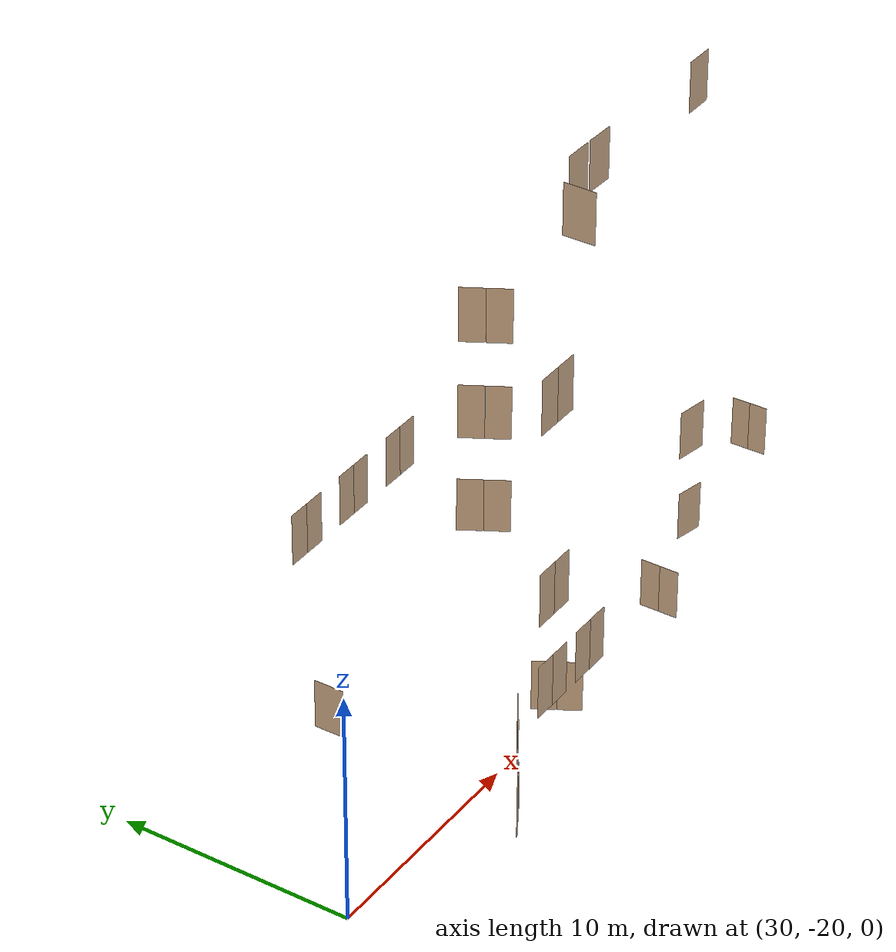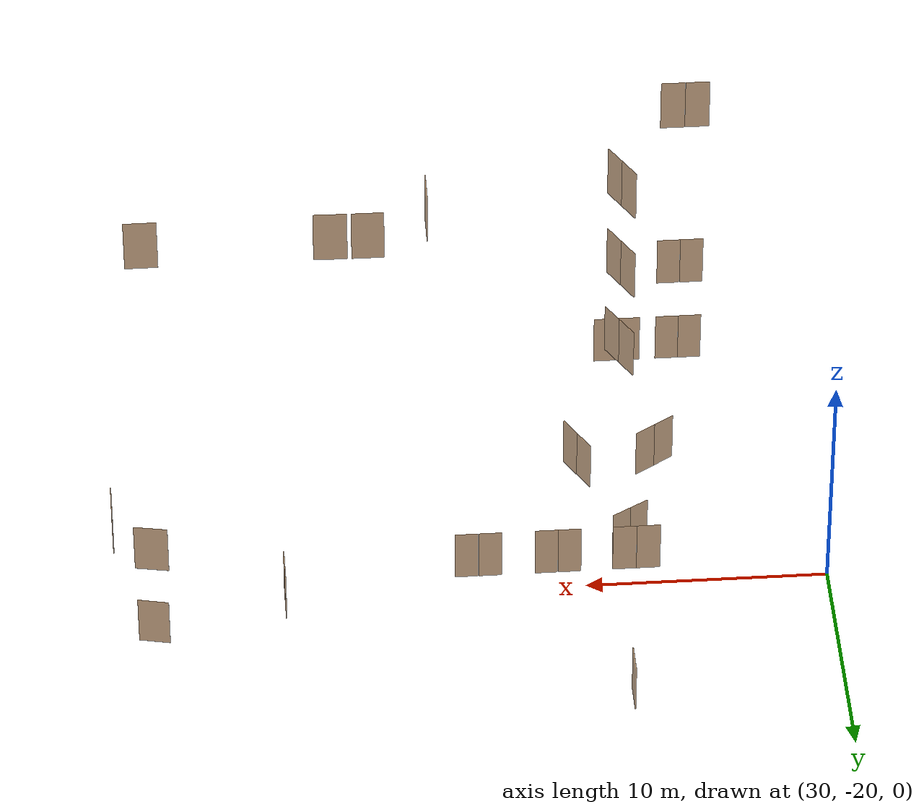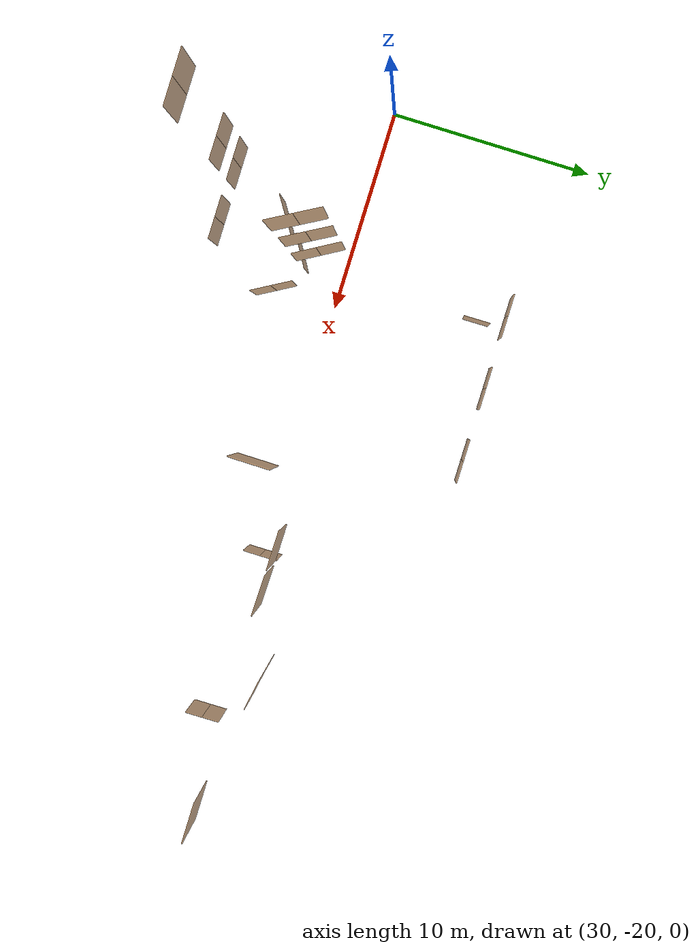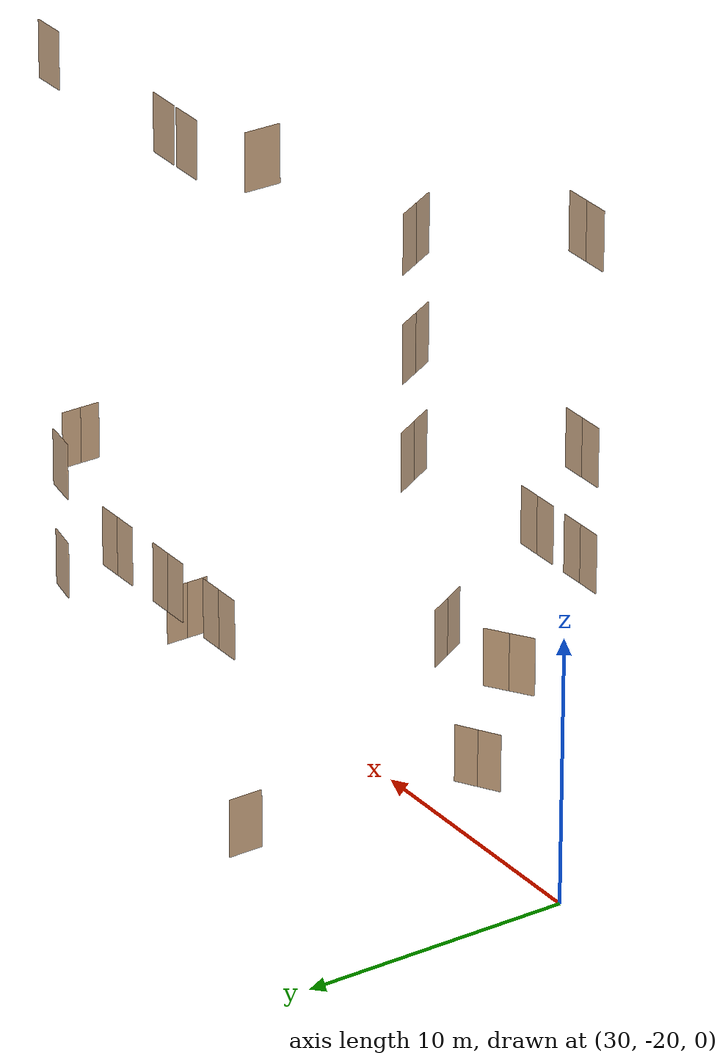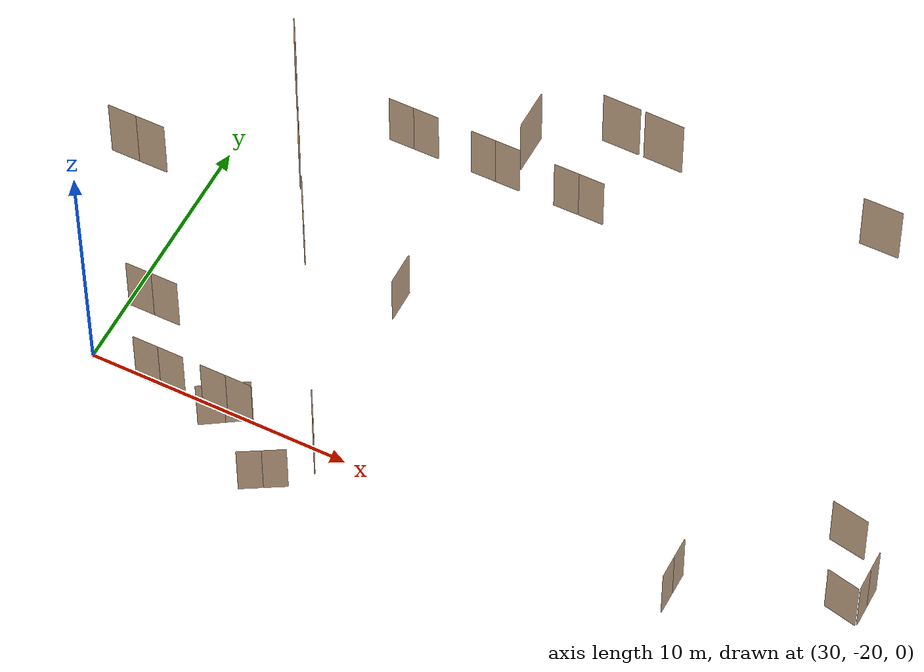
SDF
<sdf version="1.7">
 <world name="sim_world">
  <model name="Snull2">
   <pose>38.63398424373668 -13.186069521711525 0.0 0 0 1.5780668441691235</pose>
   <link name="right">
    <pose>0 0 1.11 0 0 0</pose>
    <visual name="right_visual">
     <geometry><box><size>1.2944066519722939 0.03 2.2</size></box></geometry>
     <material>
      <ambient>0.5 0.25 0 0.6</ambient>
      <diffuse>0.5 0.25 0 0.6</diffuse>
      <pbr><metal><metalness>0.0</metalness></metal></pbr>
     </material>
    </visual>
    <collision name="right_collision">
     <geometry><box><size>1.2944066519722939 0.03 2.2</size></box></geometry>
     <surface><contact><collide_bitmask>0x02</collide_bitmask></contact></surface>
    </collision>
    <inertial>
     <mass>50.0</mass>
     <inertia><ixx>20.17041666666667</ixx><iyy>27.147869086125517</iyy><izz>6.984952419458847</izz></inertia>
    </inertial>
   </link>
   <joint name="right_joint" type="revolute">
    <parent>world</parent>
    <child>right</child>
    <axis><xyz>0 0 -1</xyz><limit><lower>0</lower><upper>1.57</upper></limit></axis>
    <pose>0.6522033259861469 0 0 0 0 0</pose>
   </joint>
   <plugin name="register_component" filename="libregister_component.so">
    <component name="Door">
     <v_max_door>0.5</v_max_door>
     <a_max_door>0.3</a_max_door>
     <a_nom_door>0.15</a_nom_door>
     <dx_min_door>0.01</dx_min_door>
     <f_max_door>500.0</f_max_door>
     <ros_interface>true</ros_interface>
     <door name="Snull2" type="SwingDoor" left_joint_name="empty_joint" right_joint_name="right_joint"/>
    </component>
   </plugin>
  </model>
  <model name="Snull3">
   <pose>52.391853041108135 -19.739573610125817 0.0 0 0 -1.5707963267948966</pose>
   <link name="right">
    <pose>0.4211626778180184 0 1.11 0 0 0</pose>
    <visual name="right_visual">
     <geometry><box><size>0.8323253556360368 0.03 2.2</size></box></geometry>
     <material>
      <ambient>0.5 0.25 0 0.6</ambient>
      <diffuse>0.5 0.25 0 0.6</diffuse>
      <pbr><metal><metalness>0.0</metalness></metal></pbr>
     </material>
    </visual>
    <collision name="right_collision">
     <geometry><box><size>0.8323253556360368 0.03 2.2</size></box></geometry>
     <surface><contact><collide_bitmask>0x02</collide_bitmask></contact></surface>
    </collision>
    <inertial>
     <mass>50.0</mass>
     <inertia><ixx>20.17041666666667</ixx><iyy>23.053189573477734</iyy><izz>2.8902729068110635</izz></inertia>
    </inertial>
   </link>
   <joint name="right_joint" type="revolute">
    <parent>world</parent>
    <child>right</child>
    <axis><xyz>0 0 -1</xyz><limit><lower>0</lower><upper>1.57</upper></limit></axis>
    <pose>0.4211626778180184 0 0 0 0 0</pose>
   </joint>
   <link name="left">
    <pose>-0.4211626778180184 0 1.11 0 0 0</pose>
    <visual name="left_visual">
     <geometry><box><size>0.8323253556360368 0.03 2.2</size></box></geometry>
     <material>
      <ambient>0.5 0.25 0 0.6</ambient>
      <diffuse>0.5 0.25 0 0.6</diffuse>
      <pbr><metal><metalness>0.0</metalness></metal></pbr>
     </material>
    </visual>
    <collision name="left_collision">
     <geometry><box><size>0.8323253556360368 0.03 2.2</size></box></geometry>
     <surface><contact><collide_bitmask>0x02</collide_bitmask></contact></surface>
    </collision>
    <inertial>
     <mass>50.0</mass>
     <inertia><ixx>20.17041666666667</ixx><iyy>23.053189573477734</iyy><izz>2.8902729068110635</izz></inertia>
    </inertial>
   </link>
   <joint name="left_joint" type="revolute">
    <parent>world</parent>
    <child>left</child>
    <axis><xyz>0 0 -1</xyz><limit><lower>-1.57</lower><upper>0</upper></limit></axis>
    <pose>-0.4211626778180184 0 0 0 0 0</pose>
   </joint>
   <plugin name="register_component" filename="libregister_component.so">
    <component name="Door">
     <v_max_door>0.5</v_max_door>
     <a_max_door>0.3</a_max_door>
     <a_nom_door>0.15</a_nom_door>
     <dx_min_door>0.01</dx_min_door>
     <f_max_door>500.0</f_max_door>
     <ros_interface>true</ros_interface>
     <door name="Snull3" type="DoubleSwingDoor" left_joint_name="left_joint" right_joint_name="right_joint"/>
    </component>
   </plugin>
  </model>
  <model name="Snull4">
   <pose>57.814863906209126 -17.951051039838692 0.0 0 0 2.9326769838084155</pose>
   <link name="right">
    <pose>0 0 1.11 0 0 0</pose>
    <visual name="right_visual">
     <geometry><box><size>1.2797012906970477 0.03 2.2</size></box></geometry>
     <material>
      <ambient>0.5 0.25 0 0.6</ambient>
      <diffuse>0.5 0.25 0 0.6</diffuse>
      <pbr><metal><metalness>0.0</metalness></metal></pbr>
     </material>
    </visual>
    <collision name="right_collision">
     <geometry><box><size>1.2797012906970477 0.03 2.2</size></box></geometry>
     <surface><contact><collide_bitmask>0x02</collide_bitmask></contact></surface>
    </collision>
    <inertial>
     <mass>50.0</mass>
     <inertia><ixx>20.17041666666667</ixx><iyy>26.99014747254871</iyy><izz>6.827230805882041</izz></inertia>
    </inertial>
   </link>
   <joint name="right_joint" type="revolute">
    <parent>world</parent>
    <child>right</child>
    <axis><xyz>0 0 1</xyz><limit><lower>0</lower><upper>1.57</upper></limit></axis>
    <pose>0.6448506453485239 0 0 0 0 0</pose>
   </joint>
   <plugin name="register_component" filename="libregister_component.so">
    <component name="Door">
     <v_max_door>0.5</v_max_door>
     <a_max_door>0.3</a_max_door>
     <a_nom_door>0.15</a_nom_door>
     <dx_min_door>0.01</dx_min_door>
     <f_max_door>500.0</f_max_door>
     <ros_interface>true</ros_interface>
     <door name="Snull4" type="SwingDoor" left_joint_name="empty_joint" right_joint_name="right_joint"/>
    </component>
   </plugin>
  </model>
  <model name="Snull11">
   <pose>37.988257476757624 -22.20064966583279 0.0 0 0 0.5302253309043828</pose>
   <link name="right">
    <pose>0.43577267423389904 0 1.11 0 0 0</pose>
    <visual name="right_visual">
     <geometry><box><size>0.8615453484677981 0.03 2.2</size></box></geometry>
     <material>
      <ambient>0.5 0.25 0 0.6</ambient>
      <diffuse>0.5 0.25 0 0.6</diffuse>
      <pbr><metal><metalness>0.0</metalness></metal></pbr>
     </material>
    </visual>
    <collision name="right_collision">
     <geometry><box><size>0.8615453484677981 0.03 2.2</size></box></geometry>
     <surface><contact><collide_bitmask>0x02</collide_bitmask></contact></surface>
    </collision>
    <inertial>
     <mass>50.0</mass>
     <inertia><ixx>20.17041666666667</ixx><iyy>23.25941828111042</iyy><izz>3.0965016144437487</izz></inertia>
    </inertial>
   </link>
   <joint name="right_joint" type="revolute">
    <parent>world</parent>
    <child>right</child>
    <axis><xyz>0 0 -1</xyz><limit><lower>0</lower><upper>1.57</upper></limit></axis>
    <pose>0.43577267423389904 0 0 0 0 0</pose>
   </joint>
   <link name="left">
    <pose>-0.43577267423389904 0 1.11 0 0 0</pose>
    <visual name="left_visual">
     <geometry><box><size>0.8615453484677981 0.03 2.2</size></box></geometry>
     <material>
      <ambient>0.5 0.25 0 0.6</ambient>
      <diffuse>0.5 0.25 0 0.6</diffuse>
      <pbr><metal><metalness>0.0</metalness></metal></pbr>
     </material>
    </visual>
    <collision name="left_collision">
     <geometry><box><size>0.8615453484677981 0.03 2.2</size></box></geometry>
     <surface><contact><collide_bitmask>0x02</collide_bitmask></contact></surface>
    </collision>
    <inertial>
     <mass>50.0</mass>
     <inertia><ixx>20.17041666666667</ixx><iyy>23.25941828111042</iyy><izz>3.0965016144437487</izz></inertia>
    </inertial>
   </link>
   <joint name="left_joint" type="revolute">
    <parent>world</parent>
    <child>left</child>
    <axis><xyz>0 0 -1</xyz><limit><lower>-1.57</lower><upper>0</upper></limit></axis>
    <pose>-0.43577267423389904 0 0 0 0 0</pose>
   </joint>
   <plugin name="register_component" filename="libregister_component.so">
    <component name="Door">
     <v_max_door>0.5</v_max_door>
     <a_max_door>0.3</a_max_door>
     <a_nom_door>0.15</a_nom_door>
     <dx_min_door>0.01</dx_min_door>
     <f_max_door>500.0</f_max_door>
     <ros_interface>true</ros_interface>
     <door name="Snull11" type="DoubleSwingDoor" left_joint_name="left_joint" right_joint_name="right_joint"/>
    </component>
   </plugin>
  </model>
  <model name="0null3">
   <pose>59.31019676660564 -19.722286525034527 4.0 0 0 -1.5634548821842686</pose>
   <link name="right">
    <pose>0.38652424956682224 0 1.11 0 0 0</pose>
    <visual name="right_visual">
     <geometry><box><size>0.7630484991336445 0.03 2.2</size></box></geometry>
     <material>
      <ambient>0.5 0.25 0 0.6</ambient>
      <diffuse>0.5 0.25 0 0.6</diffuse>
      <pbr><metal><metalness>0.0</metalness></metal></pbr>
     </material>
    </visual>
    <collision name="right_collision">
     <geometry><box><size>0.7630484991336445 0.03 2.2</size></box></geometry>
     <surface><contact><collide_bitmask>0x02</collide_bitmask></contact></surface>
    </collision>
    <inertial>
     <mass>50.0</mass>
     <inertia><ixx>20.17041666666667</ixx><iyy>22.59267921679212</iyy><izz>2.4297625501254476</izz></inertia>
    </inertial>
   </link>
   <joint name="right_joint" type="revolute">
    <parent>world</parent>
    <child>right</child>
    <axis><xyz>0 0 -1</xyz><limit><lower>0</lower><upper>1.57</upper></limit></axis>
    <pose>0.38652424956682224 0 0 0 0 0</pose>
   </joint>
   <link name="left">
    <pose>-0.38652424956682224 0 1.11 0 0 0</pose>
    <visual name="left_visual">
     <geometry><box><size>0.7630484991336445 0.03 2.2</size></box></geometry>
     <material>
      <ambient>0.5 0.25 0 0.6</ambient>
      <diffuse>0.5 0.25 0 0.6</diffuse>
      <pbr><metal><metalness>0.0</metalness></metal></pbr>
     </material>
    </visual>
    <collision name="left_collision">
     <geometry><box><size>0.7630484991336445 0.03 2.2</size></box></geometry>
     <surface><contact><collide_bitmask>0x02</collide_bitmask></contact></surface>
    </collision>
    <inertial>
     <mass>50.0</mass>
     <inertia><ixx>20.17041666666667</ixx><iyy>22.59267921679212</iyy><izz>2.4297625501254476</izz></inertia>
    </inertial>
   </link>
   <joint name="left_joint" type="revolute">
    <parent>world</parent>
    <child>left</child>
    <axis><xyz>0 0 -1</xyz><limit><lower>-1.57</lower><upper>0</upper></limit></axis>
    <pose>-0.38652424956682224 0 0 0 0 0</pose>
   </joint>
   <plugin name="register_component" filename="libregister_component.so">
    <component name="Door">
     <v_max_door>0.5</v_max_door>
     <a_max_door>0.3</a_max_door>
     <a_nom_door>0.15</a_nom_door>
     <dx_min_door>0.01</dx_min_door>
     <f_max_door>500.0</f_max_door>
     <ros_interface>true</ros_interface>
     <door name="0null3" type="DoubleSwingDoor" left_joint_name="left_joint" right_joint_name="right_joint"/>
    </component>
   </plugin>
  </model>
  <model name="0null4">
   <pose>57.790818802972 -17.92288018519209 4.0 0 0 2.9607776920930116</pose>
   <link name="right">
    <pose>0 0 1.11 0 0 0</pose>
    <visual name="right_visual">
     <geometry><box><size>1.3758835635894442 0.03 2.2</size></box></geometry>
     <material>
      <ambient>0.5 0.25 0 0.6</ambient>
      <diffuse>0.5 0.25 0 0.6</diffuse>
      <pbr><metal><metalness>0.0</metalness></metal></pbr>
     </material>
    </visual>
    <collision name="right_collision">
     <geometry><box><size>1.3758835635894442 0.03 2.2</size></box></geometry>
     <surface><contact><collide_bitmask>0x02</collide_bitmask></contact></surface>
    </collision>
    <inertial>
     <mass>50.0</mass>
     <inertia><ixx>20.17041666666667</ixx><iyy>28.054398252314954</iyy><izz>7.891481585648284</izz></inertia>
    </inertial>
   </link>
   <joint name="right_joint" type="revolute">
    <parent>world</parent>
    <child>right</child>
    <axis><xyz>0 0 1</xyz><limit><lower>0</lower><upper>1.57</upper></limit></axis>
    <pose>0.6929417817947221 0 0 0 0 0</pose>
   </joint>
   <plugin name="register_component" filename="libregister_component.so">
    <component name="Door">
     <v_max_door>0.5</v_max_door>
     <a_max_door>0.3</a_max_door>
     <a_nom_door>0.15</a_nom_door>
     <dx_min_door>0.01</dx_min_door>
     <f_max_door>500.0</f_max_door>
     <ros_interface>true</ros_interface>
     <door name="0null4" type="SwingDoor" left_joint_name="empty_joint" right_joint_name="right_joint"/>
    </component>
   </plugin>
  </model>
  <model name="0null11">
   <pose>37.00974498749204 -22.76595228316468 4.0 0 0 0.5743019062294429</pose>
   <link name="right">
    <pose>0.47297792965331237 0 1.11 0 0 0</pose>
    <visual name="right_visual">
     <geometry><box><size>0.9359558593066247 0.03 2.2</size></box></geometry>
     <material>
      <ambient>0.5 0.25 0 0.6</ambient>
      <diffuse>0.5 0.25 0 0.6</diffuse>
      <pbr><metal><metalness>0.0</metalness></metal></pbr>
     </material>
    </visual>
    <collision name="right_collision">
     <geometry><box><size>0.9359558593066247 0.03 2.2</size></box></geometry>
     <surface><contact><collide_bitmask>0x02</collide_bitmask></contact></surface>
    </collision>
    <inertial>
     <mass>50.0</mass>
     <inertia><ixx>20.17041666666667</ixx><iyy>23.81672237737668</iyy><izz>3.6538057107100097</izz></inertia>
    </inertial>
   </link>
   <joint name="right_joint" type="revolute">
    <parent>world</parent>
    <child>right</child>
    <axis><xyz>0 0 -1</xyz><limit><lower>0</lower><upper>1.57</upper></limit></axis>
    <pose>0.47297792965331237 0 0 0 0 0</pose>
   </joint>
   <link name="left">
    <pose>-0.47297792965331237 0 1.11 0 0 0</pose>
    <visual name="left_visual">
     <geometry><box><size>0.9359558593066247 0.03 2.2</size></box></geometry>
     <material>
      <ambient>0.5 0.25 0 0.6</ambient>
      <diffuse>0.5 0.25 0 0.6</diffuse>
      <pbr><metal><metalness>0.0</metalness></metal></pbr>
     </material>
    </visual>
    <collision name="left_collision">
     <geometry><box><size>0.9359558593066247 0.03 2.2</size></box></geometry>
     <surface><contact><collide_bitmask>0x02</collide_bitmask></contact></surface>
    </collision>
    <inertial>
     <mass>50.0</mass>
     <inertia><ixx>20.17041666666667</ixx><iyy>23.81672237737668</iyy><izz>3.6538057107100097</izz></inertia>
    </inertial>
   </link>
   <joint name="left_joint" type="revolute">
    <parent>world</parent>
    <child>left</child>
    <axis><xyz>0 0 -1</xyz><limit><lower>-1.57</lower><upper>0</upper></limit></axis>
    <pose>-0.47297792965331237 0 0 0 0 0</pose>
   </joint>
   <plugin name="register_component" filename="libregister_component.so">
    <component name="Door">
     <v_max_door>0.5</v_max_door>
     <a_max_door>0.3</a_max_door>
     <a_nom_door>0.15</a_nom_door>
     <dx_min_door>0.01</dx_min_door>
     <f_max_door>500.0</f_max_door>
     <ros_interface>true</ros_interface>
     <door name="0null11" type="DoubleSwingDoor" left_joint_name="left_joint" right_joint_name="right_joint"/>
    </component>
   </plugin>
  </model>
  <model name="nullh">
   <pose>40.21235485195831 -22.439999253257646 4.0 0 0 2.0911618790122812</pose>
   <link name="right">
    <pose>0.47946386376674144 0 1.11 0 0 0</pose>
    <visual name="right_visual">
     <geometry><box><size>0.9489277275334829 0.03 2.2</size></box></geometry>
     <material>
      <ambient>0.5 0.25 0 0.6</ambient>
      <diffuse>0.5 0.25 0 0.6</diffuse>
      <pbr><metal><metalness>0.0</metalness></metal></pbr>
     </material>
    </visual>
    <collision name="right_collision">
     <geometry><box><size>0.9489277275334829 0.03 2.2</size></box></geometry>
     <surface><contact><collide_bitmask>0x02</collide_bitmask></contact></surface>
    </collision>
    <inertial>
     <mass>50.0</mass>
     <inertia><ixx>20.17041666666667</ixx><iyy>23.918599300341086</iyy><izz>3.7556826336744162</izz></inertia>
    </inertial>
   </link>
   <joint name="right_joint" type="revolute">
    <parent>world</parent>
    <child>right</child>
    <axis><xyz>0 0 -1</xyz><limit><lower>0</lower><upper>1.57</upper></limit></axis>
    <pose>0.47946386376674144 0 0 0 0 0</pose>
   </joint>
   <link name="left">
    <pose>-0.47946386376674144 0 1.11 0 0 0</pose>
    <visual name="left_visual">
     <geometry><box><size>0.9489277275334829 0.03 2.2</size></box></geometry>
     <material>
      <ambient>0.5 0.25 0 0.6</ambient>
      <diffuse>0.5 0.25 0 0.6</diffuse>
      <pbr><metal><metalness>0.0</metalness></metal></pbr>
     </material>
    </visual>
    <collision name="left_collision">
     <geometry><box><size>0.9489277275334829 0.03 2.2</size></box></geometry>
     <surface><contact><collide_bitmask>0x02</collide_bitmask></contact></surface>
    </collision>
    <inertial>
     <mass>50.0</mass>
     <inertia><ixx>20.17041666666667</ixx><iyy>23.918599300341086</iyy><izz>3.7556826336744162</izz></inertia>
    </inertial>
   </link>
   <joint name="left_joint" type="revolute">
    <parent>world</parent>
    <child>left</child>
    <axis><xyz>0 0 -1</xyz><limit><lower>-1.57</lower><upper>0</upper></limit></axis>
    <pose>-0.47946386376674144 0 0 0 0 0</pose>
   </joint>
   <plugin name="register_component" filename="libregister_component.so">
    <component name="Door">
     <v_max_door>0.5</v_max_door>
     <a_max_door>0.3</a_max_door>
     <a_nom_door>0.15</a_nom_door>
     <dx_min_door>0.01</dx_min_door>
     <f_max_door>500.0</f_max_door>
     <ros_interface>true</ros_interface>
     <door name="nullh" type="DoubleSwingDoor" left_joint_name="left_joint" right_joint_name="right_joint"/>
    </component>
   </plugin>
  </model>
  <model name="1null78">
   <pose>38.76369338759659 -12.253967068662948 8.0 0 0 0.0</pose>
   <link name="right">
    <pose>0.4695889183437263 0 1.11 0 0 0</pose>
    <visual name="right_visual">
     <geometry><box><size>0.9291778366874526 0.03 2.2</size></box></geometry>
     <material>
      <ambient>0.5 0.25 0 0.6</ambient>
      <diffuse>0.5 0.25 0 0.6</diffuse>
      <pbr><metal><metalness>0.0</metalness></metal></pbr>
     </material>
    </visual>
    <collision name="right_collision">
     <geometry><box><size>0.9291778366874526 0.03 2.2</size></box></geometry>
     <surface><contact><collide_bitmask>0x02</collide_bitmask></contact></surface>
    </collision>
    <inertial>
     <mass>50.0</mass>
     <inertia><ixx>20.17041666666667</ixx><iyy>23.76404771746323</iyy><izz>3.60113105079656</izz></inertia>
    </inertial>
   </link>
   <joint name="right_joint" type="revolute">
    <parent>world</parent>
    <child>right</child>
    <axis><xyz>0 0 -1</xyz><limit><lower>0</lower><upper>1.57</upper></limit></axis>
    <pose>0.4695889183437263 0 0 0 0 0</pose>
   </joint>
   <link name="left">
    <pose>-0.4695889183437263 0 1.11 0 0 0</pose>
    <visual name="left_visual">
     <geometry><box><size>0.9291778366874526 0.03 2.2</size></box></geometry>
     <material>
      <ambient>0.5 0.25 0 0.6</ambient>
      <diffuse>0.5 0.25 0 0.6</diffuse>
      <pbr><metal><metalness>0.0</metalness></metal></pbr>
     </material>
    </visual>
    <collision name="left_collision">
     <geometry><box><size>0.9291778366874526 0.03 2.2</size></box></geometry>
     <surface><contact><collide_bitmask>0x02</collide_bitmask></contact></surface>
    </collision>
    <inertial>
     <mass>50.0</mass>
     <inertia><ixx>20.17041666666667</ixx><iyy>23.76404771746323</iyy><izz>3.60113105079656</izz></inertia>
    </inertial>
   </link>
   <joint name="left_joint" type="revolute">
    <parent>world</parent>
    <child>left</child>
    <axis><xyz>0 0 -1</xyz><limit><lower>-1.57</lower><upper>0</upper></limit></axis>
    <pose>-0.4695889183437263 0 0 0 0 0</pose>
   </joint>
   <plugin name="register_component" filename="libregister_component.so">
    <component name="Door">
     <v_max_door>0.5</v_max_door>
     <a_max_door>0.3</a_max_door>
     <a_nom_door>0.15</a_nom_door>
     <dx_min_door>0.01</dx_min_door>
     <f_max_door>500.0</f_max_door>
     <ros_interface>true</ros_interface>
     <door name="1null78" type="DoubleSwingDoor" left_joint_name="left_joint" right_joint_name="right_joint"/>
    </component>
   </plugin>
  </model>
  <model name="1null79">
   <pose>41.85866034424819 -12.243400664600673 8.0 0 0 0.0</pose>
   <link name="right">
    <pose>0.4572770040697467 0 1.11 0 0 0</pose>
    <visual name="right_visual">
     <geometry><box><size>0.9045540081394934 0.03 2.2</size></box></geometry>
     <material>
      <ambient>0.5 0.25 0 0.6</ambient>
      <diffuse>0.5 0.25 0 0.6</diffuse>
      <pbr><metal><metalness>0.0</metalness></metal></pbr>
     </material>
    </visual>
    <collision name="right_collision">
     <geometry><box><size>0.9045540081394934 0.03 2.2</size></box></geometry>
     <surface><contact><collide_bitmask>0x02</collide_bitmask></contact></surface>
    </collision>
    <inertial>
     <mass>50.0</mass>
     <inertia><ixx>20.17041666666667</ixx><iyy>23.575908140171766</iyy><izz>3.4129914735050946</izz></inertia>
    </inertial>
   </link>
   <joint name="right_joint" type="revolute">
    <parent>world</parent>
    <child>right</child>
    <axis><xyz>0 0 -1</xyz><limit><lower>0</lower><upper>1.57</upper></limit></axis>
    <pose>0.4572770040697467 0 0 0 0 0</pose>
   </joint>
   <link name="left">
    <pose>-0.4572770040697467 0 1.11 0 0 0</pose>
    <visual name="left_visual">
     <geometry><box><size>0.9045540081394934 0.03 2.2</size></box></geometry>
     <material>
      <ambient>0.5 0.25 0 0.6</ambient>
      <diffuse>0.5 0.25 0 0.6</diffuse>
      <pbr><metal><metalness>0.0</metalness></metal></pbr>
     </material>
    </visual>
    <collision name="left_collision">
     <geometry><box><size>0.9045540081394934 0.03 2.2</size></box></geometry>
     <surface><contact><collide_bitmask>0x02</collide_bitmask></contact></surface>
    </collision>
    <inertial>
     <mass>50.0</mass>
     <inertia><ixx>20.17041666666667</ixx><iyy>23.575908140171766</iyy><izz>3.4129914735050946</izz></inertia>
    </inertial>
   </link>
   <joint name="left_joint" type="revolute">
    <parent>world</parent>
    <child>left</child>
    <axis><xyz>0 0 -1</xyz><limit><lower>-1.57</lower><upper>0</upper></limit></axis>
    <pose>-0.4572770040697467 0 0 0 0 0</pose>
   </joint>
   <plugin name="register_component" filename="libregister_component.so">
    <component name="Door">
     <v_max_door>0.5</v_max_door>
     <a_max_door>0.3</a_max_door>
     <a_nom_door>0.15</a_nom_door>
     <dx_min_door>0.01</dx_min_door>
     <f_max_door>500.0</f_max_door>
     <ros_interface>true</ros_interface>
     <door name="1null79" type="DoubleSwingDoor" left_joint_name="left_joint" right_joint_name="right_joint"/>
    </component>
   </plugin>
  </model>
  <model name="1null80">
   <pose>44.98934025314563 -12.243400664600673 8.0 0 0 0.0</pose>
   <link name="right">
    <pose>0.46334428555426754 0 1.11 0 0 0</pose>
    <visual name="right_visual">
     <geometry><box><size>0.9166885711085351 0.03 2.2</size></box></geometry>
     <material>
      <ambient>0.5 0.25 0 0.6</ambient>
      <diffuse>0.5 0.25 0 0.6</diffuse>
      <pbr><metal><metalness>0.0</metalness></metal></pbr>
     </material>
    </visual>
    <collision name="right_collision">
     <geometry><box><size>0.9166885711085351 0.03 2.2</size></box></geometry>
     <surface><contact><collide_bitmask>0x02</collide_bitmask></contact></surface>
    </collision>
    <inertial>
     <mass>50.0</mass>
     <inertia><ixx>20.17041666666667</ixx><iyy>23.66799140167087</iyy><izz>3.5050747350041997</izz></inertia>
    </inertial>
   </link>
   <joint name="right_joint" type="revolute">
    <parent>world</parent>
    <child>right</child>
    <axis><xyz>0 0 -1</xyz><limit><lower>0</lower><upper>1.57</upper></limit></axis>
    <pose>0.46334428555426754 0 0 0 0 0</pose>
   </joint>
   <link name="left">
    <pose>-0.46334428555426754 0 1.11 0 0 0</pose>
    <visual name="left_visual">
     <geometry><box><size>0.9166885711085351 0.03 2.2</size></box></geometry>
     <material>
      <ambient>0.5 0.25 0 0.6</ambient>
      <diffuse>0.5 0.25 0 0.6</diffuse>
      <pbr><metal><metalness>0.0</metalness></metal></pbr>
     </material>
    </visual>
    <collision name="left_collision">
     <geometry><box><size>0.9166885711085351 0.03 2.2</size></box></geometry>
     <surface><contact><collide_bitmask>0x02</collide_bitmask></contact></surface>
    </collision>
    <inertial>
     <mass>50.0</mass>
     <inertia><ixx>20.17041666666667</ixx><iyy>23.66799140167087</iyy><izz>3.5050747350041997</izz></inertia>
    </inertial>
   </link>
   <joint name="left_joint" type="revolute">
    <parent>world</parent>
    <child>left</child>
    <axis><xyz>0 0 -1</xyz><limit><lower>-1.57</lower><upper>0</upper></limit></axis>
    <pose>-0.46334428555426754 0 0 0 0 0</pose>
   </joint>
   <plugin name="register_component" filename="libregister_component.so">
    <component name="Door">
     <v_max_door>0.5</v_max_door>
     <a_max_door>0.3</a_max_door>
     <a_nom_door>0.15</a_nom_door>
     <dx_min_door>0.01</dx_min_door>
     <f_max_door>500.0</f_max_door>
     <ros_interface>true</ros_interface>
     <door name="1null80" type="DoubleSwingDoor" left_joint_name="left_joint" right_joint_name="right_joint"/>
    </component>
   </plugin>
  </model>
  <model name="1null81">
   <pose>35.91729828622631 -24.852481051413196 8.0 0 0 0.0</pose>
   <link name="right">
    <pose>0.46516446999962646 0 1.11 0 0 0</pose>
    <visual name="right_visual">
     <geometry><box><size>0.9203289399992529 0.03 2.2</size></box></geometry>
     <material>
      <ambient>0.5 0.25 0 0.6</ambient>
      <diffuse>0.5 0.25 0 0.6</diffuse>
      <pbr><metal><metalness>0.0</metalness></metal></pbr>
     </material>
    </visual>
    <collision name="right_collision">
     <geometry><box><size>0.9203289399992529 0.03 2.2</size></box></geometry>
     <surface><contact><collide_bitmask>0x02</collide_bitmask></contact></surface>
    </collision>
    <inertial>
     <mass>50.0</mass>
     <inertia><ixx>20.17041666666667</ixx><iyy>23.695855657500626</iyy><izz>3.5329389908339524</izz></inertia>
    </inertial>
   </link>
   <joint name="right_joint" type="revolute">
    <parent>world</parent>
    <child>right</child>
    <axis><xyz>0 0 -1</xyz><limit><lower>0</lower><upper>1.57</upper></limit></axis>
    <pose>0.46516446999962646 0 0 0 0 0</pose>
   </joint>
   <link name="left">
    <pose>-0.46516446999962646 0 1.11 0 0 0</pose>
    <visual name="left_visual">
     <geometry><box><size>0.9203289399992529 0.03 2.2</size></box></geometry>
     <material>
      <ambient>0.5 0.25 0 0.6</ambient>
      <diffuse>0.5 0.25 0 0.6</diffuse>
      <pbr><metal><metalness>0.0</metalness></metal></pbr>
     </material>
    </visual>
    <collision name="left_collision">
     <geometry><box><size>0.9203289399992529 0.03 2.2</size></box></geometry>
     <surface><contact><collide_bitmask>0x02</collide_bitmask></contact></surface>
    </collision>
    <inertial>
     <mass>50.0</mass>
     <inertia><ixx>20.17041666666667</ixx><iyy>23.695855657500626</iyy><izz>3.5329389908339524</izz></inertia>
    </inertial>
   </link>
   <joint name="left_joint" type="revolute">
    <parent>world</parent>
    <child>left</child>
    <axis><xyz>0 0 -1</xyz><limit><lower>-1.57</lower><upper>0</upper></limit></axis>
    <pose>-0.46516446999962646 0 0 0 0 0</pose>
   </joint>
   <plugin name="register_component" filename="libregister_component.so">
    <component name="Door">
     <v_max_door>0.5</v_max_door>
     <a_max_door>0.3</a_max_door>
     <a_nom_door>0.15</a_nom_door>
     <dx_min_door>0.01</dx_min_door>
     <f_max_door>500.0</f_max_door>
     <ros_interface>true</ros_interface>
     <door name="1null81" type="DoubleSwingDoor" left_joint_name="left_joint" right_joint_name="right_joint"/>
    </component>
   </plugin>
  </model>
  <model name="1null82">
   <pose>38.42646454840755 -24.852481051413196 8.0 0 0 3.141592653589793</pose>
   <link name="right">
    <pose>0.46856214763096027 0 1.11 0 0 0</pose>
    <visual name="right_visual">
     <geometry><box><size>0.9271242952619205 0.03 2.2</size></box></geometry>
     <material>
      <ambient>0.5 0.25 0 0.6</ambient>
      <diffuse>0.5 0.25 0 0.6</diffuse>
      <pbr><metal><metalness>0.0</metalness></metal></pbr>
     </material>
    </visual>
    <collision name="right_collision">
     <geometry><box><size>0.9271242952619205 0.03 2.2</size></box></geometry>
     <surface><contact><collide_bitmask>0x02</collide_bitmask></contact></surface>
    </collision>
    <inertial>
     <mass>50.0</mass>
     <inertia><ixx>20.17041666666667</ixx><iyy>23.748164411937143</iyy><izz>3.5852477452704705</izz></inertia>
    </inertial>
   </link>
   <joint name="right_joint" type="revolute">
    <parent>world</parent>
    <child>right</child>
    <axis><xyz>0 0 -1</xyz><limit><lower>0</lower><upper>1.57</upper></limit></axis>
    <pose>0.46856214763096027 0 0 0 0 0</pose>
   </joint>
   <link name="left">
    <pose>-0.46856214763096027 0 1.11 0 0 0</pose>
    <visual name="left_visual">
     <geometry><box><size>0.9271242952619205 0.03 2.2</size></box></geometry>
     <material>
      <ambient>0.5 0.25 0 0.6</ambient>
      <diffuse>0.5 0.25 0 0.6</diffuse>
      <pbr><metal><metalness>0.0</metalness></metal></pbr>
     </material>
    </visual>
    <collision name="left_collision">
     <geometry><box><size>0.9271242952619205 0.03 2.2</size></box></geometry>
     <surface><contact><collide_bitmask>0x02</collide_bitmask></contact></surface>
    </collision>
    <inertial>
     <mass>50.0</mass>
     <inertia><ixx>20.17041666666667</ixx><iyy>23.748164411937143</iyy><izz>3.5852477452704705</izz></inertia>
    </inertial>
   </link>
   <joint name="left_joint" type="revolute">
    <parent>world</parent>
    <child>left</child>
    <axis><xyz>0 0 -1</xyz><limit><lower>-1.57</lower><upper>0</upper></limit></axis>
    <pose>-0.46856214763096027 0 0 0 0 0</pose>
   </joint>
   <plugin name="register_component" filename="libregister_component.so">
    <component name="Door">
     <v_max_door>0.5</v_max_door>
     <a_max_door>0.3</a_max_door>
     <a_nom_door>0.15</a_nom_door>
     <dx_min_door>0.01</dx_min_door>
     <f_max_door>500.0</f_max_door>
     <ros_interface>true</ros_interface>
     <door name="1null82" type="DoubleSwingDoor" left_joint_name="left_joint" right_joint_name="right_joint"/>
    </component>
   </plugin>
  </model>
  <model name="2null76">
   <pose>35.91729828622631 -24.852481051413196 12.0 0 0 0.0</pose>
   <link name="right">
    <pose>0.46516446999962646 0 1.11 0 0 0</pose>
    <visual name="right_visual">
     <geometry><box><size>0.9203289399992529 0.03 2.2</size></box></geometry>
     <material>
      <ambient>0.5 0.25 0 0.6</ambient>
      <diffuse>0.5 0.25 0 0.6</diffuse>
      <pbr><metal><metalness>0.0</metalness></metal></pbr>
     </material>
    </visual>
    <collision name="right_collision">
     <geometry><box><size>0.9203289399992529 0.03 2.2</size></box></geometry>
     <surface><contact><collide_bitmask>0x02</collide_bitmask></contact></surface>
    </collision>
    <inertial>
     <mass>50.0</mass>
     <inertia><ixx>20.17041666666667</ixx><iyy>23.695855657500626</iyy><izz>3.5329389908339524</izz></inertia>
    </inertial>
   </link>
   <joint name="right_joint" type="revolute">
    <parent>world</parent>
    <child>right</child>
    <axis><xyz>0 0 -1</xyz><limit><lower>0</lower><upper>1.57</upper></limit></axis>
    <pose>0.46516446999962646 0 0 0 0 0</pose>
   </joint>
   <link name="left">
    <pose>-0.46516446999962646 0 1.11 0 0 0</pose>
    <visual name="left_visual">
     <geometry><box><size>0.9203289399992529 0.03 2.2</size></box></geometry>
     <material>
      <ambient>0.5 0.25 0 0.6</ambient>
      <diffuse>0.5 0.25 0 0.6</diffuse>
      <pbr><metal><metalness>0.0</metalness></metal></pbr>
     </material>
    </visual>
    <collision name="left_collision">
     <geometry><box><size>0.9203289399992529 0.03 2.2</size></box></geometry>
     <surface><contact><collide_bitmask>0x02</collide_bitmask></contact></surface>
    </collision>
    <inertial>
     <mass>50.0</mass>
     <inertia><ixx>20.17041666666667</ixx><iyy>23.695855657500626</iyy><izz>3.5329389908339524</izz></inertia>
    </inertial>
   </link>
   <joint name="left_joint" type="revolute">
    <parent>world</parent>
    <child>left</child>
    <axis><xyz>0 0 -1</xyz><limit><lower>-1.57</lower><upper>0</upper></limit></axis>
    <pose>-0.46516446999962646 0 0 0 0 0</pose>
   </joint>
   <plugin name="register_component" filename="libregister_component.so">
    <component name="Door">
     <v_max_door>0.5</v_max_door>
     <a_max_door>0.3</a_max_door>
     <a_nom_door>0.15</a_nom_door>
     <dx_min_door>0.01</dx_min_door>
     <f_max_door>500.0</f_max_door>
     <ros_interface>true</ros_interface>
     <door name="2null76" type="DoubleSwingDoor" left_joint_name="left_joint" right_joint_name="right_joint"/>
    </component>
   </plugin>
  </model>
  <model name="nulljh">
   <pose>38.814919911884374 -20.053205391479658 12.0 0 0 2.0967016108945216</pose>
   <link name="right">
    <pose>0.4912620349139623 0 1.11 0 0 0</pose>
    <visual name="right_visual">
     <geometry><box><size>0.9725240698279246 0.03 2.2</size></box></geometry>
     <material>
      <ambient>0.5 0.25 0 0.6</ambient>
      <diffuse>0.5 0.25 0 0.6</diffuse>
      <pbr><metal><metalness>0.0</metalness></metal></pbr>
     </material>
    </visual>
    <collision name="right_collision">
     <geometry><box><size>0.9725240698279246 0.03 2.2</size></box></geometry>
     <surface><contact><collide_bitmask>0x02</collide_bitmask></contact></surface>
    </collision>
    <inertial>
     <mass>50.0</mass>
     <inertia><ixx>20.17041666666667</ixx><iyy>24.107512776644462</iyy><izz>3.9445961099777915</izz></inertia>
    </inertial>
   </link>
   <joint name="right_joint" type="revolute">
    <parent>world</parent>
    <child>right</child>
    <axis><xyz>0 0 -1</xyz><limit><lower>0</lower><upper>1.57</upper></limit></axis>
    <pose>0.4912620349139623 0 0 0 0 0</pose>
   </joint>
   <link name="left">
    <pose>-0.4912620349139623 0 1.11 0 0 0</pose>
    <visual name="left_visual">
     <geometry><box><size>0.9725240698279246 0.03 2.2</size></box></geometry>
     <material>
      <ambient>0.5 0.25 0 0.6</ambient>
      <diffuse>0.5 0.25 0 0.6</diffuse>
      <pbr><metal><metalness>0.0</metalness></metal></pbr>
     </material>
    </visual>
    <collision name="left_collision">
     <geometry><box><size>0.9725240698279246 0.03 2.2</size></box></geometry>
     <surface><contact><collide_bitmask>0x02</collide_bitmask></contact></surface>
    </collision>
    <inertial>
     <mass>50.0</mass>
     <inertia><ixx>20.17041666666667</ixx><iyy>24.107512776644462</iyy><izz>3.9445961099777915</izz></inertia>
    </inertial>
   </link>
   <joint name="left_joint" type="revolute">
    <parent>world</parent>
    <child>left</child>
    <axis><xyz>0 0 -1</xyz><limit><lower>-1.57</lower><upper>0</upper></limit></axis>
    <pose>-0.4912620349139623 0 0 0 0 0</pose>
   </joint>
   <plugin name="register_component" filename="libregister_component.so">
    <component name="Door">
     <v_max_door>0.5</v_max_door>
     <a_max_door>0.3</a_max_door>
     <a_nom_door>0.15</a_nom_door>
     <dx_min_door>0.01</dx_min_door>
     <f_max_door>500.0</f_max_door>
     <ros_interface>true</ros_interface>
     <door name="nulljh" type="DoubleSwingDoor" left_joint_name="left_joint" right_joint_name="right_joint"/>
    </component>
   </plugin>
  </model>
  <model name="wx7null">
   <pose>38.8007766687819 -20.078529825536357 16.0 0 0 2.086518394794973</pose>
   <link name="right">
    <pose>0.4782375157469675 0 1.11 0 0 0</pose>
    <visual name="right_visual">
     <geometry><box><size>0.946475031493935 0.03 2.2</size></box></geometry>
     <material>
      <ambient>0.5 0.25 0 0.6</ambient>
      <diffuse>0.5 0.25 0 0.6</diffuse>
      <pbr><metal><metalness>0.0</metalness></metal></pbr>
     </material>
    </visual>
    <collision name="right_collision">
     <geometry><box><size>0.946475031493935 0.03 2.2</size></box></geometry>
     <surface><contact><collide_bitmask>0x02</collide_bitmask></contact></surface>
    </collision>
    <inertial>
     <mass>50.0</mass>
     <inertia><ixx>20.17041666666667</ixx><iyy>23.899229105172694</iyy><izz>3.736312438506022</izz></inertia>
    </inertial>
   </link>
   <joint name="right_joint" type="revolute">
    <parent>world</parent>
    <child>right</child>
    <axis><xyz>0 0 -1</xyz><limit><lower>0</lower><upper>1.57</upper></limit></axis>
    <pose>0.4782375157469675 0 0 0 0 0</pose>
   </joint>
   <link name="left">
    <pose>-0.4782375157469675 0 1.11 0 0 0</pose>
    <visual name="left_visual">
     <geometry><box><size>0.946475031493935 0.03 2.2</size></box></geometry>
     <material>
      <ambient>0.5 0.25 0 0.6</ambient>
      <diffuse>0.5 0.25 0 0.6</diffuse>
      <pbr><metal><metalness>0.0</metalness></metal></pbr>
     </material>
    </visual>
    <collision name="left_collision">
     <geometry><box><size>0.946475031493935 0.03 2.2</size></box></geometry>
     <surface><contact><collide_bitmask>0x02</collide_bitmask></contact></surface>
    </collision>
    <inertial>
     <mass>50.0</mass>
     <inertia><ixx>20.17041666666667</ixx><iyy>23.899229105172694</iyy><izz>3.736312438506022</izz></inertia>
    </inertial>
   </link>
   <joint name="left_joint" type="revolute">
    <parent>world</parent>
    <child>left</child>
    <axis><xyz>0 0 -1</xyz><limit><lower>-1.57</lower><upper>0</upper></limit></axis>
    <pose>-0.4782375157469675 0 0 0 0 0</pose>
   </joint>
   <plugin name="register_component" filename="libregister_component.so">
    <component name="Door">
     <v_max_door>0.5</v_max_door>
     <a_max_door>0.3</a_max_door>
     <a_nom_door>0.15</a_nom_door>
     <dx_min_door>0.01</dx_min_door>
     <f_max_door>500.0</f_max_door>
     <ros_interface>true</ros_interface>
     <door name="wx7null" type="DoubleSwingDoor" left_joint_name="left_joint" right_joint_name="right_joint"/>
    </component>
   </plugin>
  </model>
  <model name="x13null">
   <pose>35.87792907501333 -24.847576541796975 20.0 0 0 -0.00023030860947211983</pose>
   <link name="right">
    <pose>0.48600221405586824 0 1.11 0 0 0</pose>
    <visual name="right_visual">
     <geometry><box><size>0.9620044281117365 0.03 2.2</size></box></geometry>
     <material>
      <ambient>0.5 0.25 0 0.6</ambient>
      <diffuse>0.5 0.25 0 0.6</diffuse>
      <pbr><metal><metalness>0.0</metalness></metal></pbr>
     </material>
    </visual>
    <collision name="right_collision">
     <geometry><box><size>0.9620044281117365 0.03 2.2</size></box></geometry>
     <surface><contact><collide_bitmask>0x02</collide_bitmask></contact></surface>
    </collision>
    <inertial>
     <mass>50.0</mass>
     <inertia><ixx>20.17041666666667</ixx><iyy>24.02271883211079</iyy><izz>3.8598021654441217</izz></inertia>
    </inertial>
   </link>
   <joint name="right_joint" type="revolute">
    <parent>world</parent>
    <child>right</child>
    <axis><xyz>0 0 -1</xyz><limit><lower>0</lower><upper>1.57</upper></limit></axis>
    <pose>0.48600221405586824 0 0 0 0 0</pose>
   </joint>
   <link name="left">
    <pose>-0.48600221405586824 0 1.11 0 0 0</pose>
    <visual name="left_visual">
     <geometry><box><size>0.9620044281117365 0.03 2.2</size></box></geometry>
     <material>
      <ambient>0.5 0.25 0 0.6</ambient>
      <diffuse>0.5 0.25 0 0.6</diffuse>
      <pbr><metal><metalness>0.0</metalness></metal></pbr>
     </material>
    </visual>
    <collision name="left_collision">
     <geometry><box><size>0.9620044281117365 0.03 2.2</size></box></geometry>
     <surface><contact><collide_bitmask>0x02</collide_bitmask></contact></surface>
    </collision>
    <inertial>
     <mass>50.0</mass>
     <inertia><ixx>20.17041666666667</ixx><iyy>24.02271883211079</iyy><izz>3.8598021654441217</izz></inertia>
    </inertial>
   </link>
   <joint name="left_joint" type="revolute">
    <parent>world</parent>
    <child>left</child>
    <axis><xyz>0 0 -1</xyz><limit><lower>-1.57</lower><upper>0</upper></limit></axis>
    <pose>-0.48600221405586824 0 0 0 0 0</pose>
   </joint>
   <plugin name="register_component" filename="libregister_component.so">
    <component name="Door">
     <v_max_door>0.5</v_max_door>
     <a_max_door>0.3</a_max_door>
     <a_nom_door>0.15</a_nom_door>
     <dx_min_door>0.01</dx_min_door>
     <f_max_door>500.0</f_max_door>
     <ros_interface>true</ros_interface>
     <door name="x13null" type="DoubleSwingDoor" left_joint_name="left_joint" right_joint_name="right_joint"/>
    </component>
   </plugin>
  </model>
  <model name="x7null">
   <pose>38.81728198702184 -20.082902242055436 20.0 0 0 2.086330035668432</pose>
   <link name="right">
    <pose>0.47823278310370726 0 1.11 0 0 0</pose>
    <visual name="right_visual">
     <geometry><box><size>0.9464655662074145 0.03 2.2</size></box></geometry>
     <material>
      <ambient>0.5 0.25 0 0.6</ambient>
      <diffuse>0.5 0.25 0 0.6</diffuse>
      <pbr><metal><metalness>0.0</metalness></metal></pbr>
     </material>
    </visual>
    <collision name="right_collision">
     <geometry><box><size>0.9464655662074145 0.03 2.2</size></box></geometry>
     <surface><contact><collide_bitmask>0x02</collide_bitmask></contact></surface>
    </collision>
    <inertial>
     <mass>50.0</mass>
     <inertia><ixx>20.17041666666667</ixx><iyy>23.89915445006801</iyy><izz>3.736237783401341</izz></inertia>
    </inertial>
   </link>
   <joint name="right_joint" type="revolute">
    <parent>world</parent>
    <child>right</child>
    <axis><xyz>0 0 -1</xyz><limit><lower>0</lower><upper>1.57</upper></limit></axis>
    <pose>0.47823278310370726 0 0 0 0 0</pose>
   </joint>
   <link name="left">
    <pose>-0.47823278310370726 0 1.11 0 0 0</pose>
    <visual name="left_visual">
     <geometry><box><size>0.9464655662074145 0.03 2.2</size></box></geometry>
     <material>
      <ambient>0.5 0.25 0 0.6</ambient>
      <diffuse>0.5 0.25 0 0.6</diffuse>
      <pbr><metal><metalness>0.0</metalness></metal></pbr>
     </material>
    </visual>
    <collision name="left_collision">
     <geometry><box><size>0.9464655662074145 0.03 2.2</size></box></geometry>
     <surface><contact><collide_bitmask>0x02</collide_bitmask></contact></surface>
    </collision>
    <inertial>
     <mass>50.0</mass>
     <inertia><ixx>20.17041666666667</ixx><iyy>23.89915445006801</iyy><izz>3.736237783401341</izz></inertia>
    </inertial>
   </link>
   <joint name="left_joint" type="revolute">
    <parent>world</parent>
    <child>left</child>
    <axis><xyz>0 0 -1</xyz><limit><lower>-1.57</lower><upper>0</upper></limit></axis>
    <pose>-0.47823278310370726 0 0 0 0 0</pose>
   </joint>
   <plugin name="register_component" filename="libregister_component.so">
    <component name="Door">
     <v_max_door>0.5</v_max_door>
     <a_max_door>0.3</a_max_door>
     <a_nom_door>0.15</a_nom_door>
     <dx_min_door>0.01</dx_min_door>
     <f_max_door>500.0</f_max_door>
     <ros_interface>true</ros_interface>
     <door name="x7null" type="DoubleSwingDoor" left_joint_name="left_joint" right_joint_name="right_joint"/>
    </component>
   </plugin>
  </model>
  <model name="x4null">
   <pose>46.52054287139862 -19.124953560223428 20.0 0 0 1.562907638977098</pose>
   <link name="right">
    <pose>0 0 1.11 0 0 0</pose>
    <visual name="right_visual">
     <geometry><box><size>1.388467056215387 0.03 2.2</size></box></geometry>
     <material>
      <ambient>0.5 0.25 0 0.6</ambient>
      <diffuse>0.5 0.25 0 0.6</diffuse>
      <pbr><metal><metalness>0.0</metalness></metal></pbr>
     </material>
    </visual>
    <collision name="right_collision">
     <geometry><box><size>1.388467056215387 0.03 2.2</size></box></geometry>
     <surface><contact><collide_bitmask>0x02</collide_bitmask></contact></surface>
    </collision>
    <inertial>
     <mass>50.0</mass>
     <inertia><ixx>20.17041666666667</ixx><iyy>28.199336525814264</iyy><izz>8.036419859147594</izz></inertia>
    </inertial>
   </link>
   <joint name="right_joint" type="revolute">
    <parent>world</parent>
    <child>right</child>
    <axis><xyz>0 0 -1</xyz><limit><lower>0</lower><upper>1.57</upper></limit></axis>
    <pose>0.6992335281076935 0 0 0 0 0</pose>
   </joint>
   <plugin name="register_component" filename="libregister_component.so">
    <component name="Door">
     <v_max_door>0.5</v_max_door>
     <a_max_door>0.3</a_max_door>
     <a_nom_door>0.15</a_nom_door>
     <dx_min_door>0.01</dx_min_door>
     <f_max_door>500.0</f_max_door>
     <ros_interface>true</ros_interface>
     <door name="x4null" type="SwingDoor" left_joint_name="empty_joint" right_joint_name="right_joint"/>
    </component>
   </plugin>
  </model>
  <model name="x3null">
   <pose>48.87764886055648 -17.622219452536694 20.0 0 0 -0.007375298788877088</pose>
   <link name="right">
    <pose>0 0 1.11 0 0 0</pose>
    <visual name="right_visual">
     <geometry><box><size>1.2638510441758826 0.03 2.2</size></box></geometry>
     <material>
      <ambient>0.5 0.25 0 0.6</ambient>
      <diffuse>0.5 0.25 0 0.6</diffuse>
      <pbr><metal><metalness>0.0</metalness></metal></pbr>
     </material>
    </visual>
    <collision name="right_collision">
     <geometry><box><size>1.2638510441758826 0.03 2.2</size></box></geometry>
     <surface><contact><collide_bitmask>0x02</collide_bitmask></contact></surface>
    </collision>
    <inertial>
     <mass>50.0</mass>
     <inertia><ixx>20.17041666666667</ixx><iyy>26.82216442443529</iyy><izz>6.659247757768619</izz></inertia>
    </inertial>
   </link>
   <joint name="right_joint" type="revolute">
    <parent>world</parent>
    <child>right</child>
    <axis><xyz>0 0 -1</xyz><limit><lower>0</lower><upper>1.57</upper></limit></axis>
    <pose>0.6369255220879413 0 0 0 0 0</pose>
   </joint>
   <plugin name="register_component" filename="libregister_component.so">
    <component name="Door">
     <v_max_door>0.5</v_max_door>
     <a_max_door>0.3</a_max_door>
     <a_nom_door>0.15</a_nom_door>
     <dx_min_door>0.01</dx_min_door>
     <f_max_door>500.0</f_max_door>
     <ros_interface>true</ros_interface>
     <door name="x3null" type="SwingDoor" left_joint_name="empty_joint" right_joint_name="right_joint"/>
    </component>
   </plugin>
  </model>
  <model name="x2null">
   <pose>50.328889056971306 -17.64075683765626 20.0 0 0 3.1206687653632024</pose>
   <link name="right">
    <pose>0 0 1.11 0 0 0</pose>
    <visual name="right_visual">
     <geometry><box><size>1.3095723813439168 0.03 2.2</size></box></geometry>
     <material>
      <ambient>0.5 0.25 0 0.6</ambient>
      <diffuse>0.5 0.25 0 0.6</diffuse>
      <pbr><metal><metalness>0.0</metalness></metal></pbr>
     </material>
    </visual>
    <collision name="right_collision">
     <geometry><box><size>1.3095723813439168 0.03 2.2</size></box></geometry>
     <surface><contact><collide_bitmask>0x02</collide_bitmask></contact></surface>
    </collision>
    <inertial>
     <mass>50.0</mass>
     <inertia><ixx>20.17041666666667</ixx><iyy>27.312415924911576</iyy><izz>7.149499258244904</izz></inertia>
    </inertial>
   </link>
   <joint name="right_joint" type="revolute">
    <parent>world</parent>
    <child>right</child>
    <axis><xyz>0 0 1</xyz><limit><lower>0</lower><upper>1.57</upper></limit></axis>
    <pose>0.6597861906719584 0 0 0 0 0</pose>
   </joint>
   <plugin name="register_component" filename="libregister_component.so">
    <component name="Door">
     <v_max_door>0.5</v_max_door>
     <a_max_door>0.3</a_max_door>
     <a_nom_door>0.15</a_nom_door>
     <dx_min_door>0.01</dx_min_door>
     <f_max_door>500.0</f_max_door>
     <ros_interface>true</ros_interface>
     <door name="x2null" type="SwingDoor" left_joint_name="empty_joint" right_joint_name="right_joint"/>
    </component>
   </plugin>
  </model>
  <model name="x1null">
   <pose>57.63785781630865 -17.635751046044625 20.0 0 0 0.002944640684123406</pose>
   <link name="right">
    <pose>0 0 1.11 0 0 0</pose>
    <visual name="right_visual">
     <geometry><box><size>1.290947050380997 0.03 2.2</size></box></geometry>
     <material>
      <ambient>0.5 0.25 0 0.6</ambient>
      <diffuse>0.5 0.25 0 0.6</diffuse>
      <pbr><metal><metalness>0.0</metalness></metal></pbr>
     </material>
    </visual>
    <collision name="right_collision">
     <geometry><box><size>1.290947050380997 0.03 2.2</size></box></geometry>
     <surface><contact><collide_bitmask>0x02</collide_bitmask></contact></surface>
    </collision>
    <inertial>
     <mass>50.0</mass>
     <inertia><ixx>20.17041666666667</ixx><iyy>27.110601195364158</iyy><izz>6.947684528697485</izz></inertia>
    </inertial>
   </link>
   <joint name="right_joint" type="revolute">
    <parent>world</parent>
    <child>right</child>
    <axis><xyz>0 0 -1</xyz><limit><lower>0</lower><upper>1.57</upper></limit></axis>
    <pose>0.6504735251904985 0 0 0 0 0</pose>
   </joint>
   <plugin name="register_component" filename="libregister_component.so">
    <component name="Door">
     <v_max_door>0.5</v_max_door>
     <a_max_door>0.3</a_max_door>
     <a_nom_door>0.15</a_nom_door>
     <dx_min_door>0.01</dx_min_door>
     <f_max_door>500.0</f_max_door>
     <ros_interface>true</ros_interface>
     <door name="x1null" type="SwingDoor" left_joint_name="empty_joint" right_joint_name="right_joint"/>
    </component>
   </plugin>
  </model>
 </world>
</sdf>
